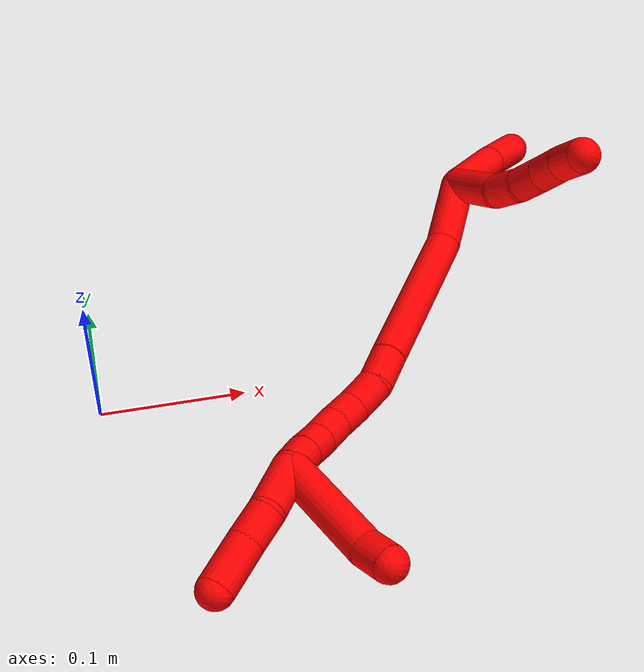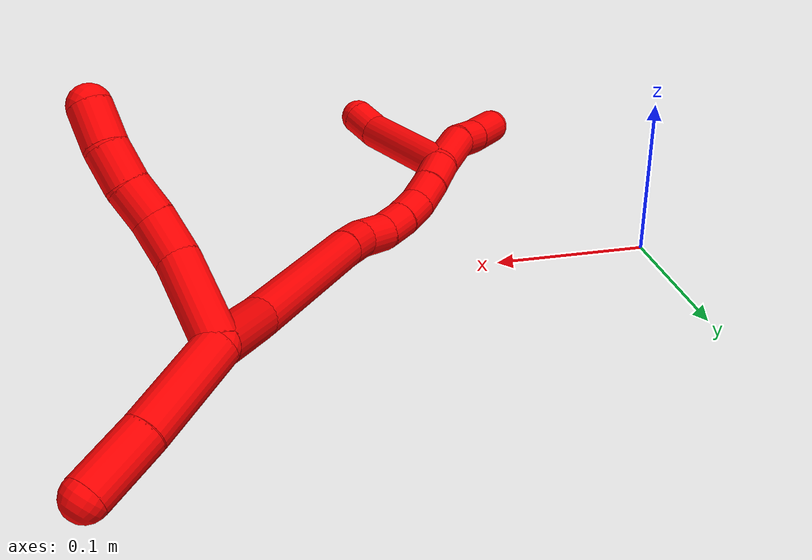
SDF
<sdf version="1.7">
 <world name="default">
  <model name="2">
   <static>0</static>
   <link name="2">
    <collision name="collision-cylinder-e_1_2_8">
     <pose>-0.019538 0.01337 -0.013612 -2.36517 -0.797266 1.60023</pose>
     <geometry><cylinder><radius>0.0125</radius><length>0.054617</length></cylinder></geometry>
     <surface>
      <friction><ode><mu>1.16</mu><mu2>1.16</mu2><slip1>0</slip1><slip2>0</slip2></ode></friction>
      <contact><ode><kp>1e+06</kp><kd>1</kd><max_vel>0</max_vel><min_depth>0.001</min_depth></ode></contact>
     </surface>
    </collision>
    <visual name="visual-cylinder-e_1_2_8">
     <pose>-0.019538 0.01337 -0.013612 -2.36517 -0.797266 1.60023</pose>
     <geometry><cylinder><radius>0.0125</radius><length>0.054617</length></cylinder></geometry>
     <material><ambient>1 0 0 1</ambient></material>
    </visual>
    <collision name="collision-cylinder-e_2_8_9">
     <pose>-0.046244 0.036042 -0.032747 -2.10663 -0.585188 0.973489</pose>
     <geometry><cylinder><radius>0.0125</radius><length>0.025956</length></cylinder></geometry>
     <surface>
      <friction><ode><mu>1.16</mu><mu2>1.16</mu2><slip1>0</slip1><slip2>0</slip2></ode></friction>
      <contact><ode><kp>1e+06</kp><kd>1</kd><max_vel>0</max_vel><min_depth>0.001</min_depth></ode></contact>
     </surface>
    </collision>
    <visual name="visual-cylinder-e_2_8_9">
     <pose>-0.046244 0.036042 -0.032747 -2.10663 -0.585188 0.973489</pose>
     <geometry><cylinder><radius>0.0125</radius><length>0.025956</length></cylinder></geometry>
     <material><ambient>1 0 0 1</ambient></material>
    </visual>
    <collision name="collision-cylinder-e_3_9_10">
     <pose>-0.057915 0.054505 -0.041707 -1.92964 -0.431257 0.612303</pose>
     <geometry><cylinder><radius>0.0125</radius><length>0.02154</length></cylinder></geometry>
     <surface>
      <friction><ode><mu>1.16</mu><mu2>1.16</mu2><slip1>0</slip1><slip2>0</slip2></ode></friction>
      <contact><ode><kp>1e+06</kp><kd>1</kd><max_vel>0</max_vel><min_depth>0.001</min_depth></ode></contact>
     </surface>
    </collision>
    <visual name="visual-cylinder-e_3_9_10">
     <pose>-0.057915 0.054505 -0.041707 -1.92964 -0.431257 0.612303</pose>
     <geometry><cylinder><radius>0.0125</radius><length>0.02154</length></cylinder></geometry>
     <material><ambient>1 0 0 1</ambient></material>
    </visual>
    <collision name="collision-cylinder-e_4_10_11">
     <pose>-0.067297 0.072634 -0.050451 -2.10522 -0.437925 0.744226</pose>
     <geometry><cylinder><radius>0.0125</radius><length>0.023017</length></cylinder></geometry>
     <surface>
      <friction><ode><mu>1.16</mu><mu2>1.16</mu2><slip1>0</slip1><slip2>0</slip2></ode></friction>
      <contact><ode><kp>1e+06</kp><kd>1</kd><max_vel>0</max_vel><min_depth>0.001</min_depth></ode></contact>
     </surface>
    </collision>
    <visual name="visual-cylinder-e_4_10_11">
     <pose>-0.067297 0.072634 -0.050451 -2.10522 -0.437925 0.744226</pose>
     <geometry><cylinder><radius>0.0125</radius><length>0.023017</length></cylinder></geometry>
     <material><ambient>1 0 0 1</ambient></material>
    </visual>
    <collision name="collision-cylinder-e_5_11_6">
     <pose>-0.078405 0.089756 -0.062788 -2.28226 -0.524545 1.05993</pose>
     <geometry><cylinder><radius>0.0125</radius><length>0.02487</length></cylinder></geometry>
     <surface>
      <friction><ode><mu>1.16</mu><mu2>1.16</mu2><slip1>0</slip1><slip2>0</slip2></ode></friction>
      <contact><ode><kp>1e+06</kp><kd>1</kd><max_vel>0</max_vel><min_depth>0.001</min_depth></ode></contact>
     </surface>
    </collision>
    <visual name="visual-cylinder-e_5_11_6">
     <pose>-0.078405 0.089756 -0.062788 -2.28226 -0.524545 1.05993</pose>
     <geometry><cylinder><radius>0.0125</radius><length>0.02487</length></cylinder></geometry>
     <material><ambient>1 0 0 1</ambient></material>
    </visual>
    <collision name="collision-cylinder-e_1_2_12">
     <pose>0.009812 0.008272 0.027081 -0.296464 0.333572 -0.050268</pose>
     <geometry><cylinder><radius>0.0125</radius><length>0.059935</length></cylinder></geometry>
     <surface>
      <friction><ode><mu>1.16</mu><mu2>1.16</mu2><slip1>0</slip1><slip2>0</slip2></ode></friction>
      <contact><ode><kp>1e+06</kp><kd>1</kd><max_vel>0</max_vel><min_depth>0.001</min_depth></ode></contact>
     </surface>
    </collision>
    <visual name="visual-cylinder-e_1_2_12">
     <pose>0.009812 0.008272 0.027081 -0.296464 0.333572 -0.050268</pose>
     <geometry><cylinder><radius>0.0125</radius><length>0.059935</length></cylinder></geometry>
     <material><ambient>1 0 0 1</ambient></material>
    </visual>
    <collision name="collision-cylinder-e_2_12_5">
     <pose>0.02504 0.02253 0.072495 -0.315572 0.273767 -0.043826</pose>
     <geometry><cylinder><radius>0.0125</radius><length>0.040065</length></cylinder></geometry>
     <surface>
      <friction><ode><mu>1.16</mu><mu2>1.16</mu2><slip1>0</slip1><slip2>0</slip2></ode></friction>
      <contact><ode><kp>1e+06</kp><kd>1</kd><max_vel>0</max_vel><min_depth>0.001</min_depth></ode></contact>
     </surface>
    </collision>
    <visual name="visual-cylinder-e_2_12_5">
     <pose>0.02504 0.02253 0.072495 -0.315572 0.273767 -0.043826</pose>
     <geometry><cylinder><radius>0.0125</radius><length>0.040065</length></cylinder></geometry>
     <material><ambient>1 0 0 1</ambient></material>
    </visual>
    <collision name="collision-cylinder-e_1_2_13">
     <pose>-0.018655 -0.015031 -0.013266 2.2939 -0.74944 -1.4339</pose>
     <geometry><cylinder><radius>0.0125</radius><length>0.054769</length></cylinder></geometry>
     <surface>
      <friction><ode><mu>1.16</mu><mu2>1.16</mu2><slip1>0</slip1><slip2>0</slip2></ode></friction>
      <contact><ode><kp>1e+06</kp><kd>1</kd><max_vel>0</max_vel><min_depth>0.001</min_depth></ode></contact>
     </surface>
    </collision>
    <visual name="visual-cylinder-e_1_2_13">
     <pose>-0.018655 -0.015031 -0.013266 2.2939 -0.74944 -1.4339</pose>
     <geometry><cylinder><radius>0.0125</radius><length>0.054769</length></cylinder></geometry>
     <material><ambient>1 0 0 1</ambient></material>
    </visual>
    <collision name="collision-cylinder-e_2_13_14">
     <pose>-0.068669 -0.058928 -0.063933 2.48429 -0.585968 -1.44848</pose>
     <geometry><cylinder><radius>0.0125</radius><length>0.11341</length></cylinder></geometry>
     <surface>
      <friction><ode><mu>1.16</mu><mu2>1.16</mu2><slip1>0</slip1><slip2>0</slip2></ode></friction>
      <contact><ode><kp>1e+06</kp><kd>1</kd><max_vel>0</max_vel><min_depth>0.001</min_depth></ode></contact>
     </surface>
    </collision>
    <visual name="visual-cylinder-e_2_13_14">
     <pose>-0.068669 -0.058928 -0.063933 2.48429 -0.585968 -1.44848</pose>
     <geometry><cylinder><radius>0.0125</radius><length>0.11341</length></cylinder></geometry>
     <material><ambient>1 0 0 1</ambient></material>
    </visual>
    <collision name="collision-cylinder-e_3_14_15">
     <pose>-0.107103 -0.094805 -0.109083 2.40611 -0.595176 -1.34467</pose>
     <geometry><cylinder><radius>0.0125</radius><length>0.025241</length></cylinder></geometry>
     <surface>
      <friction><ode><mu>1.16</mu><mu2>1.16</mu2><slip1>0</slip1><slip2>0</slip2></ode></friction>
      <contact><ode><kp>1e+06</kp><kd>1</kd><max_vel>0</max_vel><min_depth>0.001</min_depth></ode></contact>
     </surface>
    </collision>
    <visual name="visual-cylinder-e_3_14_15">
     <pose>-0.107103 -0.094805 -0.109083 2.40611 -0.595176 -1.34467</pose>
     <geometry><cylinder><radius>0.0125</radius><length>0.025241</length></cylinder></geometry>
     <material><ambient>1 0 0 1</ambient></material>
    </visual>
    <collision name="collision-cylinder-e_4_15_16">
     <pose>-0.117535 -0.109916 -0.124733 2.34382 -0.288445 -0.663667</pose>
     <geometry><cylinder><radius>0.0125</radius><length>0.023604</length></cylinder></geometry>
     <surface>
      <friction><ode><mu>1.16</mu><mu2>1.16</mu2><slip1>0</slip1><slip2>0</slip2></ode></friction>
      <contact><ode><kp>1e+06</kp><kd>1</kd><max_vel>0</max_vel><min_depth>0.001</min_depth></ode></contact>
     </surface>
    </collision>
    <visual name="visual-cylinder-e_4_15_16">
     <pose>-0.117535 -0.109916 -0.124733 2.34382 -0.288445 -0.663667</pose>
     <geometry><cylinder><radius>0.0125</radius><length>0.023604</length></cylinder></geometry>
     <material><ambient>1 0 0 1</ambient></material>
    </visual>
    <collision name="collision-cylinder-e_5_16_17">
     <pose>-0.123777 -0.122983 -0.140964 2.60375 -0.289043 -0.971713</pose>
     <geometry><cylinder><radius>0.0125</radius><length>0.020238</length></cylinder></geometry>
     <surface>
      <friction><ode><mu>1.16</mu><mu2>1.16</mu2><slip1>0</slip1><slip2>0</slip2></ode></friction>
      <contact><ode><kp>1e+06</kp><kd>1</kd><max_vel>0</max_vel><min_depth>0.001</min_depth></ode></contact>
     </surface>
    </collision>
    <visual name="visual-cylinder-e_5_16_17">
     <pose>-0.123777 -0.122983 -0.140964 2.60375 -0.289043 -0.971713</pose>
     <geometry><cylinder><radius>0.0125</radius><length>0.020238</length></cylinder></geometry>
     <material><ambient>1 0 0 1</ambient></material>
    </visual>
    <collision name="collision-cylinder-e_6_17_18">
     <pose>-0.130318 -0.132154 -0.15806 2.69462 -0.359778 -1.34964</pose>
     <geometry><cylinder><radius>0.0125</radius><length>0.020773</length></cylinder></geometry>
     <surface>
      <friction><ode><mu>1.16</mu><mu2>1.16</mu2><slip1>0</slip1><slip2>0</slip2></ode></friction>
      <contact><ode><kp>1e+06</kp><kd>1</kd><max_vel>0</max_vel><min_depth>0.001</min_depth></ode></contact>
     </surface>
    </collision>
    <visual name="visual-cylinder-e_6_17_18">
     <pose>-0.130318 -0.132154 -0.15806 2.69462 -0.359778 -1.34964</pose>
     <geometry><cylinder><radius>0.0125</radius><length>0.020773</length></cylinder></geometry>
     <material><ambient>1 0 0 1</ambient></material>
    </visual>
    <collision name="collision-cylinder-e_7_18_19">
     <pose>-0.137391 -0.138509 -0.176595 2.92461 -0.329083 -1.98049</pose>
     <geometry><cylinder><radius>0.0125</radius><length>0.021139</length></cylinder></geometry>
     <surface>
      <friction><ode><mu>1.16</mu><mu2>1.16</mu2><slip1>0</slip1><slip2>0</slip2></ode></friction>
      <contact><ode><kp>1e+06</kp><kd>1</kd><max_vel>0</max_vel><min_depth>0.001</min_depth></ode></contact>
     </surface>
    </collision>
    <visual name="visual-cylinder-e_7_18_19">
     <pose>-0.137391 -0.138509 -0.176595 2.92461 -0.329083 -1.98049</pose>
     <geometry><cylinder><radius>0.0125</radius><length>0.021139</length></cylinder></geometry>
     <material><ambient>1 0 0 1</ambient></material>
    </visual>
    <collision name="collision-cylinder-e_8_19_1">
     <pose>-0.145014 -0.142513 -0.195706 2.9461 -0.415936 -2.27158</pose>
     <geometry><cylinder><radius>0.0125</radius><length>0.020826</length></cylinder></geometry>
     <surface>
      <friction><ode><mu>1.16</mu><mu2>1.16</mu2><slip1>0</slip1><slip2>0</slip2></ode></friction>
      <contact><ode><kp>1e+06</kp><kd>1</kd><max_vel>0</max_vel><min_depth>0.001</min_depth></ode></contact>
     </surface>
    </collision>
    <visual name="visual-cylinder-e_8_19_1">
     <pose>-0.145014 -0.142513 -0.195706 2.9461 -0.415936 -2.27158</pose>
     <geometry><cylinder><radius>0.0125</radius><length>0.020826</length></cylinder></geometry>
     <material><ambient>1 0 0 1</ambient></material>
    </visual>
    <collision name="collision-cylinder-e_1_1_20">
     <pose>-0.159865 -0.151664 -0.220108 2.69014 -0.566517 -1.80572</pose>
     <geometry><cylinder><radius>0.0125</radius><length>0.039666</length></cylinder></geometry>
     <surface>
      <friction><ode><mu>1.16</mu><mu2>1.16</mu2><slip1>0</slip1><slip2>0</slip2></ode></friction>
      <contact><ode><kp>1e+06</kp><kd>1</kd><max_vel>0</max_vel><min_depth>0.001</min_depth></ode></contact>
     </surface>
    </collision>
    <visual name="visual-cylinder-e_1_1_20">
     <pose>-0.159865 -0.151664 -0.220108 2.69014 -0.566517 -1.80572</pose>
     <geometry><cylinder><radius>0.0125</radius><length>0.039666</length></cylinder></geometry>
     <material><ambient>1 0 0 1</ambient></material>
    </visual>
    <collision name="collision-cylinder-e_2_20_21">
     <pose>-0.175944 -0.166687 -0.242944 2.35983 -0.460295 -1.03398</pose>
     <geometry><cylinder><radius>0.0125</radius><length>0.024468</length></cylinder></geometry>
     <surface>
      <friction><ode><mu>1.16</mu><mu2>1.16</mu2><slip1>0</slip1><slip2>0</slip2></ode></friction>
      <contact><ode><kp>1e+06</kp><kd>1</kd><max_vel>0</max_vel><min_depth>0.001</min_depth></ode></contact>
     </surface>
    </collision>
    <visual name="visual-cylinder-e_2_20_21">
     <pose>-0.175944 -0.166687 -0.242944 2.35983 -0.460295 -1.03398</pose>
     <geometry><cylinder><radius>0.0125</radius><length>0.024468</length></cylinder></geometry>
     <material><ambient>1 0 0 1</ambient></material>
    </visual>
    <collision name="collision-cylinder-e_3_21_4">
     <pose>-0.189962 -0.184513 -0.262799 2.44489 -0.499102 -1.22386</pose>
     <geometry><cylinder><radius>0.0125</radius><length>0.035866</length></cylinder></geometry>
     <surface>
      <friction><ode><mu>1.16</mu><mu2>1.16</mu2><slip1>0</slip1><slip2>0</slip2></ode></friction>
      <contact><ode><kp>1e+06</kp><kd>1</kd><max_vel>0</max_vel><min_depth>0.001</min_depth></ode></contact>
     </surface>
    </collision>
    <visual name="visual-cylinder-e_3_21_4">
     <pose>-0.189962 -0.184513 -0.262799 2.44489 -0.499102 -1.22386</pose>
     <geometry><cylinder><radius>0.0125</radius><length>0.035866</length></cylinder></geometry>
     <material><ambient>1 0 0 1</ambient></material>
    </visual>
    <collision name="collision-cylinder-e_1_1_22">
     <pose>-0.187056 -0.135615 -0.210712 -2.14525 -1.30204 1.90148</pose>
     <geometry><cylinder><radius>0.0125</radius><length>0.078488</length></cylinder></geometry>
     <surface>
      <friction><ode><mu>1.16</mu><mu2>1.16</mu2><slip1>0</slip1><slip2>0</slip2></ode></friction>
      <contact><ode><kp>1e+06</kp><kd>1</kd><max_vel>0</max_vel><min_depth>0.001</min_depth></ode></contact>
     </surface>
    </collision>
    <visual name="visual-cylinder-e_1_1_22">
     <pose>-0.187056 -0.135615 -0.210712 -2.14525 -1.30204 1.90148</pose>
     <geometry><cylinder><radius>0.0125</radius><length>0.078488</length></cylinder></geometry>
     <material><ambient>1 0 0 1</ambient></material>
    </visual>
    <collision name="collision-cylinder-e_2_22_3">
     <pose>-0.234106 -0.122017 -0.219069 -2.07796 -1.02881 1.53057</pose>
     <geometry><cylinder><radius>0.0125</radius><length>0.021512</length></cylinder></geometry>
     <surface>
      <friction><ode><mu>1.16</mu><mu2>1.16</mu2><slip1>0</slip1><slip2>0</slip2></ode></friction>
      <contact><ode><kp>1e+06</kp><kd>1</kd><max_vel>0</max_vel><min_depth>0.001</min_depth></ode></contact>
     </surface>
    </collision>
    <visual name="visual-cylinder-e_2_22_3">
     <pose>-0.234106 -0.122017 -0.219069 -2.07796 -1.02881 1.53057</pose>
     <geometry><cylinder><radius>0.0125</radius><length>0.021512</length></cylinder></geometry>
     <material><ambient>1 0 0 1</ambient></material>
    </visual>
    <collision name="collision-sphere-3">
     <pose>-0.24332 -0.117167 -0.221764 0 -0 0</pose>
     <geometry><sphere><radius>0.0125</radius></sphere></geometry>
     <surface>
      <friction><ode><mu>1.16</mu><mu2>1.16</mu2><slip1>0</slip1><slip2>0</slip2></ode></friction>
      <contact><ode><kp>1e+06</kp><kd>1</kd><max_vel>0</max_vel><min_depth>0.001</min_depth></ode></contact>
     </surface>
    </collision>
    <visual name="visual-sphere-3">
     <pose>-0.24332 -0.117167 -0.221764 0 -0 0</pose>
     <geometry><sphere><radius>0.0125</radius></sphere></geometry>
     <material><ambient>1 0 0 1</ambient></material>
    </visual>
    <collision name="collision-sphere-22">
     <pose>-0.224892 -0.126867 -0.216374 0 -0 0</pose>
     <geometry><sphere><radius>0.0125</radius></sphere></geometry>
     <surface>
      <friction><ode><mu>1.16</mu><mu2>1.16</mu2><slip1>0</slip1><slip2>0</slip2></ode></friction>
      <contact><ode><kp>1e+06</kp><kd>1</kd><max_vel>0</max_vel><min_depth>0.001</min_depth></ode></contact>
     </surface>
    </collision>
    <visual name="visual-sphere-22">
     <pose>-0.224892 -0.126867 -0.216374 0 -0 0</pose>
     <geometry><sphere><radius>0.0125</radius></sphere></geometry>
     <material><ambient>1 0 0 1</ambient></material>
    </visual>
    <collision name="collision-sphere-4">
     <pose>-0.198545 -0.194616 -0.274875 0 -0 0</pose>
     <geometry><sphere><radius>0.0125</radius></sphere></geometry>
     <surface>
      <friction><ode><mu>1.16</mu><mu2>1.16</mu2><slip1>0</slip1><slip2>0</slip2></ode></friction>
      <contact><ode><kp>1e+06</kp><kd>1</kd><max_vel>0</max_vel><min_depth>0.001</min_depth></ode></contact>
     </surface>
    </collision>
    <visual name="visual-sphere-4">
     <pose>-0.198545 -0.194616 -0.274875 0 -0 0</pose>
     <geometry><sphere><radius>0.0125</radius></sphere></geometry>
     <material><ambient>1 0 0 1</ambient></material>
    </visual>
    <collision name="collision-sphere-21">
     <pose>-0.181379 -0.174409 -0.250723 0 -0 0</pose>
     <geometry><sphere><radius>0.0125</radius></sphere></geometry>
     <surface>
      <friction><ode><mu>1.16</mu><mu2>1.16</mu2><slip1>0</slip1><slip2>0</slip2></ode></friction>
      <contact><ode><kp>1e+06</kp><kd>1</kd><max_vel>0</max_vel><min_depth>0.001</min_depth></ode></contact>
     </surface>
    </collision>
    <visual name="visual-sphere-21">
     <pose>-0.181379 -0.174409 -0.250723 0 -0 0</pose>
     <geometry><sphere><radius>0.0125</radius></sphere></geometry>
     <material><ambient>1 0 0 1</ambient></material>
    </visual>
    <collision name="collision-sphere-20">
     <pose>-0.170509 -0.158965 -0.235166 0 -0 0</pose>
     <geometry><sphere><radius>0.0125</radius></sphere></geometry>
     <surface>
      <friction><ode><mu>1.16</mu><mu2>1.16</mu2><slip1>0</slip1><slip2>0</slip2></ode></friction>
      <contact><ode><kp>1e+06</kp><kd>1</kd><max_vel>0</max_vel><min_depth>0.001</min_depth></ode></contact>
     </surface>
    </collision>
    <visual name="visual-sphere-20">
     <pose>-0.170509 -0.158965 -0.235166 0 -0 0</pose>
     <geometry><sphere><radius>0.0125</radius></sphere></geometry>
     <material><ambient>1 0 0 1</ambient></material>
    </visual>
    <collision name="collision-sphere-6">
     <pose>-0.084633 0.097908 -0.069815 0 -0 0</pose>
     <geometry><sphere><radius>0.0125</radius></sphere></geometry>
     <surface>
      <friction><ode><mu>1.16</mu><mu2>1.16</mu2><slip1>0</slip1><slip2>0</slip2></ode></friction>
      <contact><ode><kp>1e+06</kp><kd>1</kd><max_vel>0</max_vel><min_depth>0.001</min_depth></ode></contact>
     </surface>
    </collision>
    <visual name="visual-sphere-6">
     <pose>-0.084633 0.097908 -0.069815 0 -0 0</pose>
     <geometry><sphere><radius>0.0125</radius></sphere></geometry>
     <material><ambient>1 0 0 1</ambient></material>
    </visual>
    <collision name="collision-sphere-11">
     <pose>-0.072177 0.081604 -0.05576 0 -0 0</pose>
     <geometry><sphere><radius>0.0125</radius></sphere></geometry>
     <surface>
      <friction><ode><mu>1.16</mu><mu2>1.16</mu2><slip1>0</slip1><slip2>0</slip2></ode></friction>
      <contact><ode><kp>1e+06</kp><kd>1</kd><max_vel>0</max_vel><min_depth>0.001</min_depth></ode></contact>
     </surface>
    </collision>
    <visual name="visual-sphere-11">
     <pose>-0.072177 0.081604 -0.05576 0 -0 0</pose>
     <geometry><sphere><radius>0.0125</radius></sphere></geometry>
     <material><ambient>1 0 0 1</ambient></material>
    </visual>
    <collision name="collision-sphere-10">
     <pose>-0.062417 0.063665 -0.045143 0 -0 0</pose>
     <geometry><sphere><radius>0.0125</radius></sphere></geometry>
     <surface>
      <friction><ode><mu>1.16</mu><mu2>1.16</mu2><slip1>0</slip1><slip2>0</slip2></ode></friction>
      <contact><ode><kp>1e+06</kp><kd>1</kd><max_vel>0</max_vel><min_depth>0.001</min_depth></ode></contact>
     </surface>
    </collision>
    <visual name="visual-sphere-10">
     <pose>-0.062417 0.063665 -0.045143 0 -0 0</pose>
     <geometry><sphere><radius>0.0125</radius></sphere></geometry>
     <material><ambient>1 0 0 1</ambient></material>
    </visual>
    <collision name="collision-sphere-9">
     <pose>-0.053413 0.045344 -0.038271 0 -0 0</pose>
     <geometry><sphere><radius>0.0125</radius></sphere></geometry>
     <surface>
      <friction><ode><mu>1.16</mu><mu2>1.16</mu2><slip1>0</slip1><slip2>0</slip2></ode></friction>
      <contact><ode><kp>1e+06</kp><kd>1</kd><max_vel>0</max_vel><min_depth>0.001</min_depth></ode></contact>
     </surface>
    </collision>
    <visual name="visual-sphere-9">
     <pose>-0.053413 0.045344 -0.038271 0 -0 0</pose>
     <geometry><sphere><radius>0.0125</radius></sphere></geometry>
     <material><ambient>1 0 0 1</ambient></material>
    </visual>
    <collision name="collision-sphere-2">
     <geometry><sphere><radius>0.0125</radius></sphere></geometry>
     <surface>
      <friction><ode><mu>1.16</mu><mu2>1.16</mu2><slip1>0</slip1><slip2>0</slip2></ode></friction>
      <contact><ode><kp>1e+06</kp><kd>1</kd><max_vel>0</max_vel><min_depth>0.001</min_depth></ode></contact>
     </surface>
    </collision>
    <visual name="visual-sphere-2">
     <geometry><sphere><radius>0.0125</radius></sphere></geometry>
     <material><ambient>1 0 0 1</ambient></material>
    </visual>
    <collision name="collision-sphere-19">
     <pose>-0.140806 -0.140663 -0.186362 0 -0 0</pose>
     <geometry><sphere><radius>0.0125</radius></sphere></geometry>
     <surface>
      <friction><ode><mu>1.16</mu><mu2>1.16</mu2><slip1>0</slip1><slip2>0</slip2></ode></friction>
      <contact><ode><kp>1e+06</kp><kd>1</kd><max_vel>0</max_vel><min_depth>0.001</min_depth></ode></contact>
     </surface>
    </collision>
    <visual name="visual-sphere-19">
     <pose>-0.140806 -0.140663 -0.186362 0 -0 0</pose>
     <geometry><sphere><radius>0.0125</radius></sphere></geometry>
     <material><ambient>1 0 0 1</ambient></material>
    </visual>
    <collision name="collision-sphere-8">
     <pose>-0.039076 0.026739 -0.027224 0 -0 0</pose>
     <geometry><sphere><radius>0.0125</radius></sphere></geometry>
     <surface>
      <friction><ode><mu>1.16</mu><mu2>1.16</mu2><slip1>0</slip1><slip2>0</slip2></ode></friction>
      <contact><ode><kp>1e+06</kp><kd>1</kd><max_vel>0</max_vel><min_depth>0.001</min_depth></ode></contact>
     </surface>
    </collision>
    <visual name="visual-sphere-8">
     <pose>-0.039076 0.026739 -0.027224 0 -0 0</pose>
     <geometry><sphere><radius>0.0125</radius></sphere></geometry>
     <material><ambient>1 0 0 1</ambient></material>
    </visual>
    <collision name="collision-sphere-12">
     <pose>0.019624 0.016544 0.054161 0 -0 0</pose>
     <geometry><sphere><radius>0.0125</radius></sphere></geometry>
     <surface>
      <friction><ode><mu>1.16</mu><mu2>1.16</mu2><slip1>0</slip1><slip2>0</slip2></ode></friction>
      <contact><ode><kp>1e+06</kp><kd>1</kd><max_vel>0</max_vel><min_depth>0.001</min_depth></ode></contact>
     </surface>
    </collision>
    <visual name="visual-sphere-12">
     <pose>0.019624 0.016544 0.054161 0 -0 0</pose>
     <geometry><sphere><radius>0.0125</radius></sphere></geometry>
     <material><ambient>1 0 0 1</ambient></material>
    </visual>
    <collision name="collision-sphere-5">
     <pose>0.030456 0.028516 0.090829 0 -0 0</pose>
     <geometry><sphere><radius>0.0125</radius></sphere></geometry>
     <surface>
      <friction><ode><mu>1.16</mu><mu2>1.16</mu2><slip1>0</slip1><slip2>0</slip2></ode></friction>
      <contact><ode><kp>1e+06</kp><kd>1</kd><max_vel>0</max_vel><min_depth>0.001</min_depth></ode></contact>
     </surface>
    </collision>
    <visual name="visual-sphere-5">
     <pose>0.030456 0.028516 0.090829 0 -0 0</pose>
     <geometry><sphere><radius>0.0125</radius></sphere></geometry>
     <material><ambient>1 0 0 1</ambient></material>
    </visual>
    <collision name="collision-sphere-13">
     <pose>-0.03731 -0.030061 -0.026531 0 -0 0</pose>
     <geometry><sphere><radius>0.0125</radius></sphere></geometry>
     <surface>
      <friction><ode><mu>1.16</mu><mu2>1.16</mu2><slip1>0</slip1><slip2>0</slip2></ode></friction>
      <contact><ode><kp>1e+06</kp><kd>1</kd><max_vel>0</max_vel><min_depth>0.001</min_depth></ode></contact>
     </surface>
    </collision>
    <visual name="visual-sphere-13">
     <pose>-0.03731 -0.030061 -0.026531 0 -0 0</pose>
     <geometry><sphere><radius>0.0125</radius></sphere></geometry>
     <material><ambient>1 0 0 1</ambient></material>
    </visual>
    <collision name="collision-sphere-14">
     <pose>-0.100027 -0.087794 -0.101334 0 -0 0</pose>
     <geometry><sphere><radius>0.0125</radius></sphere></geometry>
     <surface>
      <friction><ode><mu>1.16</mu><mu2>1.16</mu2><slip1>0</slip1><slip2>0</slip2></ode></friction>
      <contact><ode><kp>1e+06</kp><kd>1</kd><max_vel>0</max_vel><min_depth>0.001</min_depth></ode></contact>
     </surface>
    </collision>
    <visual name="visual-sphere-14">
     <pose>-0.100027 -0.087794 -0.101334 0 -0 0</pose>
     <geometry><sphere><radius>0.0125</radius></sphere></geometry>
     <material><ambient>1 0 0 1</ambient></material>
    </visual>
    <collision name="collision-sphere-15">
     <pose>-0.114178 -0.101817 -0.116832 0 -0 0</pose>
     <geometry><sphere><radius>0.0125</radius></sphere></geometry>
     <surface>
      <friction><ode><mu>1.16</mu><mu2>1.16</mu2><slip1>0</slip1><slip2>0</slip2></ode></friction>
      <contact><ode><kp>1e+06</kp><kd>1</kd><max_vel>0</max_vel><min_depth>0.001</min_depth></ode></contact>
     </surface>
    </collision>
    <visual name="visual-sphere-15">
     <pose>-0.114178 -0.101817 -0.116832 0 -0 0</pose>
     <geometry><sphere><radius>0.0125</radius></sphere></geometry>
     <material><ambient>1 0 0 1</ambient></material>
    </visual>
    <collision name="collision-sphere-16">
     <pose>-0.120893 -0.118014 -0.132634 0 -0 0</pose>
     <geometry><sphere><radius>0.0125</radius></sphere></geometry>
     <surface>
      <friction><ode><mu>1.16</mu><mu2>1.16</mu2><slip1>0</slip1><slip2>0</slip2></ode></friction>
      <contact><ode><kp>1e+06</kp><kd>1</kd><max_vel>0</max_vel><min_depth>0.001</min_depth></ode></contact>
     </surface>
    </collision>
    <visual name="visual-sphere-16">
     <pose>-0.120893 -0.118014 -0.132634 0 -0 0</pose>
     <geometry><sphere><radius>0.0125</radius></sphere></geometry>
     <material><ambient>1 0 0 1</ambient></material>
    </visual>
    <collision name="collision-sphere-17">
     <pose>-0.126661 -0.127952 -0.149294 0 -0 0</pose>
     <geometry><sphere><radius>0.0125</radius></sphere></geometry>
     <surface>
      <friction><ode><mu>1.16</mu><mu2>1.16</mu2><slip1>0</slip1><slip2>0</slip2></ode></friction>
      <contact><ode><kp>1e+06</kp><kd>1</kd><max_vel>0</max_vel><min_depth>0.001</min_depth></ode></contact>
     </surface>
    </collision>
    <visual name="visual-sphere-17">
     <pose>-0.126661 -0.127952 -0.149294 0 -0 0</pose>
     <geometry><sphere><radius>0.0125</radius></sphere></geometry>
     <material><ambient>1 0 0 1</ambient></material>
    </visual>
    <collision name="collision-sphere-18">
     <pose>-0.133975 -0.136356 -0.166827 0 -0 0</pose>
     <geometry><sphere><radius>0.0125</radius></sphere></geometry>
     <surface>
      <friction><ode><mu>1.16</mu><mu2>1.16</mu2><slip1>0</slip1><slip2>0</slip2></ode></friction>
      <contact><ode><kp>1e+06</kp><kd>1</kd><max_vel>0</max_vel><min_depth>0.001</min_depth></ode></contact>
     </surface>
    </collision>
    <visual name="visual-sphere-18">
     <pose>-0.133975 -0.136356 -0.166827 0 -0 0</pose>
     <geometry><sphere><radius>0.0125</radius></sphere></geometry>
     <material><ambient>1 0 0 1</ambient></material>
    </visual>
    <collision name="collision-sphere-1">
     <pose>-0.149221 -0.144363 -0.20505 0 -0 0</pose>
     <geometry><sphere><radius>0.0125</radius></sphere></geometry>
     <surface>
      <friction><ode><mu>1.16</mu><mu2>1.16</mu2><slip1>0</slip1><slip2>0</slip2></ode></friction>
      <contact><ode><kp>1e+06</kp><kd>1</kd><max_vel>0</max_vel><min_depth>0.001</min_depth></ode></contact>
     </surface>
    </collision>
    <visual name="visual-sphere-1">
     <pose>-0.149221 -0.144363 -0.20505 0 -0 0</pose>
     <geometry><sphere><radius>0.0125</radius></sphere></geometry>
     <material><ambient>1 0 0 1</ambient></material>
    </visual>
    <inertial>
     <pose>-0.090698 -0.060617 -0.098211 0 -0 0</pose>
     <mass>0.75</mass>
     <inertia><ixx>-9.2e-05</ixx><ixy>0</ixy><ixz>0</ixz><iyy>5e-06</iyy><iyz>0</iyz><izz>0.000173</izz></inertia>
    </inertial>
   </link>
   <pose>0.287918 0.136878 0.043541 2.2824 -0.245846 1.96062</pose>
  </model>
 </world>
</sdf>
